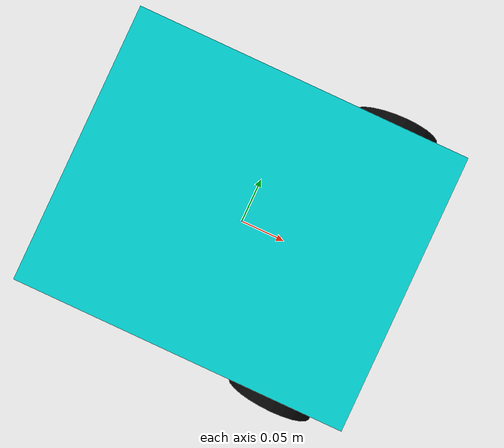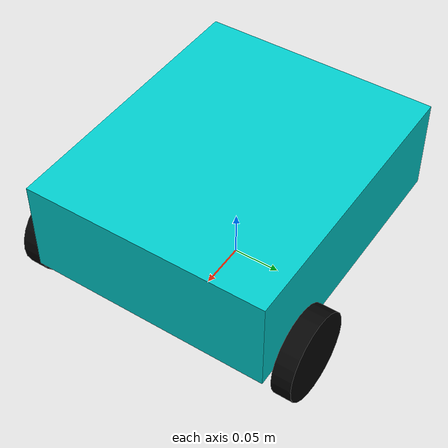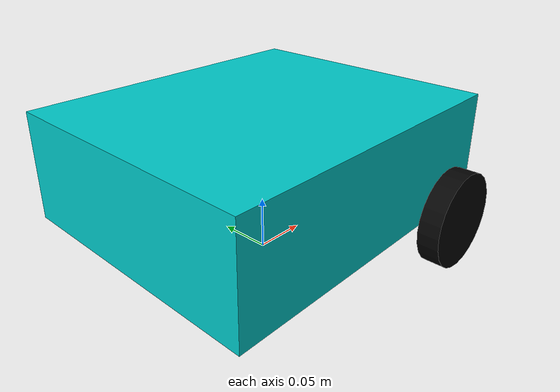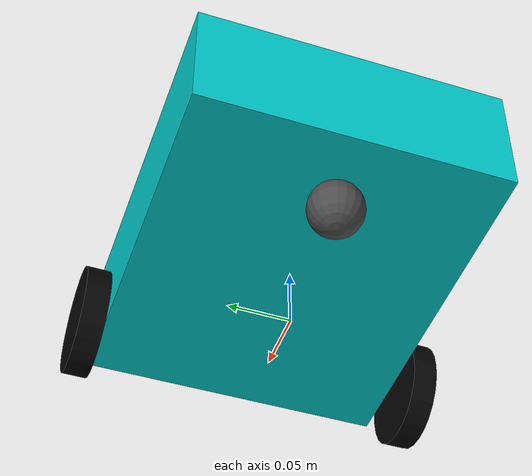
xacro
<?xml version="1.0"?>
<robot name="mobile_manipulator" xmlns:xacro="http://www.ros.org/wiki/xacro">

  <!-- MAIN ROBOT DESCRIPTION FILE -->

  <!-- Include all xacro files -->
  <xacro:include filename="$(find mobile_manipulator_description)/urdf/constants.xacro"/>
  <xacro:include filename="$(find mobile_manipulator_description)/urdf/materials.xacro"/>
  <xacro:include filename="$(find mobile_manipulator_description)/urdf/inertial_macros.xacro"/>
  <xacro:include filename="$(find mobile_manipulator_description)/urdf/links.xacro"/>
  <xacro:include filename="$(find mobile_manipulator_description)/urdf/joints.xacro"/>
  <xacro:include filename="$(find mobile_manipulator_description)/urdf/mobile_manipulator_ros2_control.xacro"/>
  <xacro:include filename="$(find mobile_manipulator_description)/urdf/mobile_manipulator_gazebo.xacro"/>

</robot>

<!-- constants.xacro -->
<robot xmlns:xacro="http://www.ros.org/wiki/xacro">

  <!-- ARGUMENTS (Launch-time configuration) -->
  <xacro:arg name="robot_name" default=""/>
  <xacro:arg name="prefix" default=""/>
  <xacro:arg name="use_ignition" default="false"/>
  <xacro:arg name="use_ros2_control" default="false"/>
  <xacro:arg name="use_plugin_control" default="false"/>
  <xacro:arg name="use_hardware" default="false"/>
  <xacro:arg name="use_mock_hardware" default="false"/>

  <!-- PROPERTIES (Converted from arguments) -->
  <xacro:property name="robot_name" value="$(arg robot_name)"/>
  <xacro:property name="prefix" value="$(arg prefix)"/>
  <xacro:property name="use_ignition" value="$(arg use_ignition)"/>
  <xacro:property name="use_ros2_control" value="$(arg use_ros2_control)"/>
  <xacro:property name="use_plugin_control" value="$(arg use_plugin_control)"/>
  <xacro:property name="use_hardware" value="$(arg use_hardware)"/>
  <xacro:property name="use_mock_hardware" value="$(arg use_mock_hardware)"/>

  <!-- NAMESPACE HELPER (for ROS topics and frames) -->
  <xacro:property name="ns_prefix" value="${prefix if prefix else ''}"/>
  <xacro:property name="namespace" value="${'/' + prefix if prefix else ''}"/>
  <xacro:property name="frame_prefix" value="${prefix + '/' if prefix else ''}"/>
  <xacro:property name="name" value="${prefix if prefix else robot_name}"/>
  <xacro:property name="control_file" value="${prefix + '_' if prefix else ''}"/>

  <!-- PHYSICAL CONSTANTS -->
  <xacro:property name="PI" value="3.14159265359"/>

  <!-- BASE DIMENSIONS -->
  <xacro:property name="base_mass" value="20.0"/>
  <xacro:property name="base_width" value="0.25"/>
  <xacro:property name="base_length" value="0.3"/>
  <xacro:property name="base_height" value="0.1"/>

  <!-- WHEEL DIMENSIONS -->
  <xacro:property name="wheel_mass" value="5.0"/>
  <xacro:property name="wheel_radius" value="0.04445"/>
  <xacro:property name="wheel_width" value="0.02"/>

  <!-- CASTER WHEEL DIMENSIONS -->
  <xacro:property name="caster_mass" value="0.5"/>
  <xacro:property name="caster_radius" value="${wheel_radius/2}"/>

  <!-- ARM LINK POSITIONS -->
  <!-- Arm mounted directly on top of base link -->
  <xacro:property name="ur_base_height" value="${base_height}"/>  <!-- Top of base box -->

  <!-- WHEEL POSITIONS (Direct mounting to base) -->
  <!-- Wheels positioned OUTSIDE the base to avoid collision -->
  <!-- Base box is 0.3m(x) x 0.25m(y) x 0.1m(z) -->
  <xacro:property name="wheel_x_offset" value="${base_length/2 - 0.05}"/>        <!-- Front of base (0.15m from center) -->
  <xacro:property name="wheel_y_offset" value="${base_length/2 - wheel_width/2}"/>        <!-- Outside base (base width is 0.25m/2=0.125m) -->
  <xacro:property name="wheel_z_offset" value="0"/>     <!-- At wheel radius height from ground -->

  <!-- CASTER POSITION (Back center for stability) -->
  <!-- Positioned at rear, at caster radius height -->
  <xacro:property name="caster_x_offset" value="${-base_length/2 + 0.05}"/>    <!-- Behind base rear edge -->
  <xacro:property name="caster_z_offset" value="${-caster_radius}"/>            <!-- Caster center at radius height -->

  <!-- DEPRECATED: Old steering positions (kept for reference) -->
  <xacro:property name="steer_x_offset" value="0.09525"/>
  <xacro:property name="steer_y_offset" value="0.1016"/>
  <xacro:property name="steer_z_offset" value="0.079375"/>

</robot>

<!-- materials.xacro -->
<robot xmlns:xacro="http://www.ros.org/wiki/xacro">

  <!-- MATERIAL DEFINITIONS -->

  <!-- Existing Materials -->
  <material name="blue_grey">
    <color rgba="0.792156862745098 0.819607843137255 0.933333333333333 1"/>
  </material>

  <material name="white">
    <color rgba="1.0 1.0 1.0 1.0"/>
  </material>

  <material name="black">
    <color rgba="0.0 0.0 0.0 1.0"/>
  </material>

  <material name="red">
    <color rgba="0.8 0.0 0.0 1.0"/>
  </material>

  <material name="green">
    <color rgba="0.0 0.8 0.0 1.0"/>
  </material>

  <!-- Additional Robot Colors -->
  <material name="blue">
    <color rgba="0.0 0.0 0.8 1.0"/>
  </material>

  <material name="orange">
    <color rgba="1.0 0.5 0.0 1.0"/>
  </material>

  <material name="yellow">
    <color rgba="1.0 1.0 0.0 1.0"/>
  </material>

  <material name="purple">
    <color rgba="0.5 0.0 0.5 1.0"/>
  </material>

  <material name="cyan">
    <color rgba="0.0 0.8 0.8 1.0"/>
  </material>

  <material name="magenta">
    <color rgba="0.8 0.0 0.8 1.0"/>
  </material>

  <!-- Metallic/Industrial Colors -->
  <material name="dark_grey">
    <color rgba="0.3 0.3 0.3 1.0"/>
  </material>

  <material name="light_grey">
    <color rgba="0.7 0.7 0.7 1.0"/>
  </material>

  <material name="silver">
    <color rgba="0.75 0.75 0.75 1.0"/>
  </material>

  <material name="dark_blue">
    <color rgba="0.0 0.0 0.5 1.0"/>
  </material>

  <!-- Arm/Gripper Colors -->
  <material name="arm_blue">
    <color rgba="0.2 0.4 0.8 1.0"/>
  </material>

  <material name="arm_orange">
    <color rgba="1.0 0.4 0.0 1.0"/>  <!-- Bright orange -->
  </material>

  <material name="gripper_green">
    <color rgba="0.2 0.8 0.2 1.0"/>
  </material>

  <material name="gripper_red">
    <color rgba="0.9 0.1 0.1 1.0"/>
  </material>

  <!-- Transparent Materials (for visualization) -->
  <material name="transparent_blue">
    <color rgba="0.0 0.0 0.8 0.5"/>
  </material>

  <material name="transparent_red">
    <color rgba="0.8 0.0 0.0 0.5"/>
  </material>

  <material name="black_rubber">
    <color rgba="0.02 0.02 0.02 1.0"/>  <!-- Almost pure black -->
  </material>

  <material name="steel_gray">
    <color rgba="0.6 0.6 0.6 1.0"/>  <!-- Metallic silver-gray -->
  </material>

</robot>

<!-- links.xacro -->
<robot xmlns:xacro="http://www.ros.org/wiki/xacro">

  <!-- BASE FOOTPRINT -->
  <link name="${frame_prefix}base_footprint"/>

  <!-- BASE LINK -->
  <link name="${frame_prefix}base_link">
    <xacro:inertial_box mass="${base_mass}" x="${base_length}" y="${base_width}" z="${base_height}">
        <origin xyz="0 0 ${base_height/2}" rpy="0 0 0"/>
    </xacro:inertial_box>
    <visual>
      <origin xyz="0 0 ${base_height/2}" rpy="0 0 0"/>
      <geometry>
        <!-- Box representing the base platform -->
        <box size="${base_length} ${base_width} ${base_height}"/>
      </geometry>
       <material name="cyan"/>
    </visual>
    <!-- STL mesh version - COMMENTED OUT -->
    <collision>
      <origin xyz="0 0 ${base_height/2}" rpy="0 0 0"/>
      <geometry>
        <!-- Slightly smaller collision box to prevent wheel interference -->
        <box size="${base_length - 0.02} ${base_width - 0.02} ${base_height}"/>
      </geometry>
    </collision>
    <!-- STL mesh collision - COMMENTED OUT -->
  </link>

  <!-- UR ARM LINKS -->

  <!-- VACUUM GRIPPER -->

  <!-- FRONT WHEEL STEERING LINKS - COMMENTED OUT -->

  <!-- Front Right Steer Link - COMMENTED OUT -->

  <!-- Front Left Steer Link - COMMENTED OUT -->

  <!-- FRONT WHEELS (CYLINDERS INSTEAD OF STL) -->

  <!-- Front Right Wheel - Using Cylinder Geometry -->
  <link name="${frame_prefix}fr_wheel">
    <!-- Inertia for a cylinder: I = m*r^2/2 (roll), I = m*(3*r^2 + h^2)/12 (pitch/yaw) -->
    <xacro:inertial_cylinder mass="${wheel_mass}" length="${wheel_width}" radius="${wheel_radius}">
        <origin xyz="0 0 0" rpy="0 0 0"/>
    </xacro:inertial_cylinder>
    <visual>
      <origin xyz="0 0 0" rpy="0 0 0"/>
      <geometry>
        <!-- Cylinder: radius and length (height along y-axis when rpy="0 0 0") -->
        <cylinder radius="${wheel_radius}" length="${wheel_width}"/>
      </geometry>
      <material name="black_rubber"/>
    </visual>
    <!-- STL mesh version - COMMENTED OUT -->
    <collision>
      <origin xyz="0 0 0" rpy="0 0 0"/>
      <geometry>
        <cylinder radius="${wheel_radius}" length="${wheel_width}"/>
      </geometry>
    </collision>
    <!-- STL mesh collision - COMMENTED OUT -->
  </link>

  <!-- Front Left Wheel - Using Cylinder Geometry -->
  <link name="${frame_prefix}fl_wheel">
    <xacro:inertial_cylinder mass="${wheel_mass}" length="${wheel_width}" radius="${wheel_radius}">
        <origin xyz="0 0 0" rpy="0 0 0"/>
    </xacro:inertial_cylinder>
    <visual>
      <origin xyz="0 0 0" rpy="0 0 0"/>
      <geometry>
        <!-- Cylinder: radius and length (height along y-axis when rpy="0 0 0") -->
        <cylinder radius="${wheel_radius}" length="${wheel_width}"/>
      </geometry>
      <material name="black_rubber"/>
    </visual>
    <!-- STL mesh version - COMMENTED OUT -->
    <collision>
      <origin xyz="0 0 0" rpy="0 0 0"/>
      <geometry>
        <cylinder radius="${wheel_radius}" length="${wheel_width}"/>
      </geometry>
    </collision>
    <!-- STL mesh collision - COMMENTED OUT -->
  </link>

  <!-- BACK WHEELS - COMMENTED OUT -->
  <!-- (Previously used 4-wheel configuration) -->

  <!-- Back Right Steer Link - COMMENTED OUT -->

  <!-- Back Right Wheel - COMMENTED OUT -->

  <!-- Back Left Steer Link - COMMENTED OUT -->

  <!-- Back Left Wheel - COMMENTED OUT -->

  <!-- CASTER WHEEL (SPHERE FOR OMNIDIRECTIONAL) -->
  <link name="${frame_prefix}caster_wheel">
    <!-- Inertia for a sphere: I = 2/5 * m * r^2 -->
    <xacro:inertial_sphere mass="${caster_mass}" radius="${caster_radius}">
        <origin xyz="0 0 0" rpy="0 0 0"/>
    </xacro:inertial_sphere>
    <visual>
      <origin xyz="0 0 0" rpy="0 0 0"/>
      <geometry>
        <!-- Sphere for omnidirectional rolling -->
        <sphere radius="${caster_radius}"/>
      </geometry>
      <material name="dark_grey"/>
    </visual>
    <collision>
      <origin xyz="0 0 0" rpy="0 0 0"/>
      <geometry>
        <sphere radius="${caster_radius}"/>
      </geometry>
    </collision>
  </link>

</robot>

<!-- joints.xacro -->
<robot xmlns:xacro="http://www.ros.org/wiki/xacro">

  <!-- BASE JOINTS -->
  <joint name="${frame_prefix}base_footprint_base_link_joint" type="fixed">
    <origin xyz="0 0 ${wheel_radius}" rpy="0 0 0"/>
    <parent link="${frame_prefix}base_footprint"/>
    <child link="${frame_prefix}base_link"/>
  </joint>

  <!-- UR ARM JOINTS -->
  <!-- GRIPPER JOINT -->

  <!-- STEERING JOINTS - COMMENTED OUT -->

  <!-- Front Right Steering - COMMENTED OUT -->

  <!-- Front Left Steering - COMMENTED OUT -->

  <!-- Back Right Steering (Fixed) - COMMENTED OUT -->

  <!-- Back Left Steering (Fixed) - COMMENTED OUT -->

  <!-- WHEEL JOINTS - DIRECTLY ATTACHED TO BASE -->

  <!-- Front Right Wheel - Now directly attached to base_link -->
  <joint name="${frame_prefix}fr_wheel_joint" type="continuous">
    <origin xyz="${wheel_x_offset} ${-wheel_y_offset} ${wheel_z_offset}" rpy="-1.5708 0 0"/>
    <parent link="${frame_prefix}base_link"/>
    <child link="${frame_prefix}fr_wheel"/>
    <axis xyz="0 0 1"/>
  </joint>

  <!-- Front Left Wheel - Now directly attached to base_link -->
  <joint name="${frame_prefix}fl_wheel_joint" type="continuous">
    <origin xyz="${wheel_x_offset} ${wheel_y_offset} ${wheel_z_offset}" rpy="-1.5708 0 0"/>
    <parent link="${frame_prefix}base_link"/>
    <child link="${frame_prefix}fl_wheel"/>
    <axis xyz="0 0 1"/>
  </joint>

  <!-- Back Right Wheel - COMMENTED OUT -->

  <!-- Back Left Wheel - COMMENTED OUT -->

  <!-- CASTER WHEEL JOINT -->
  <joint name="${frame_prefix}caster_joint" type="fixed">
    <origin xyz="${caster_x_offset} 0 ${caster_z_offset}" rpy="0 0 0"/>
    <parent link="${frame_prefix}base_link"/>
    <child link="${frame_prefix}caster_wheel"/>
  </joint>

</robot>
